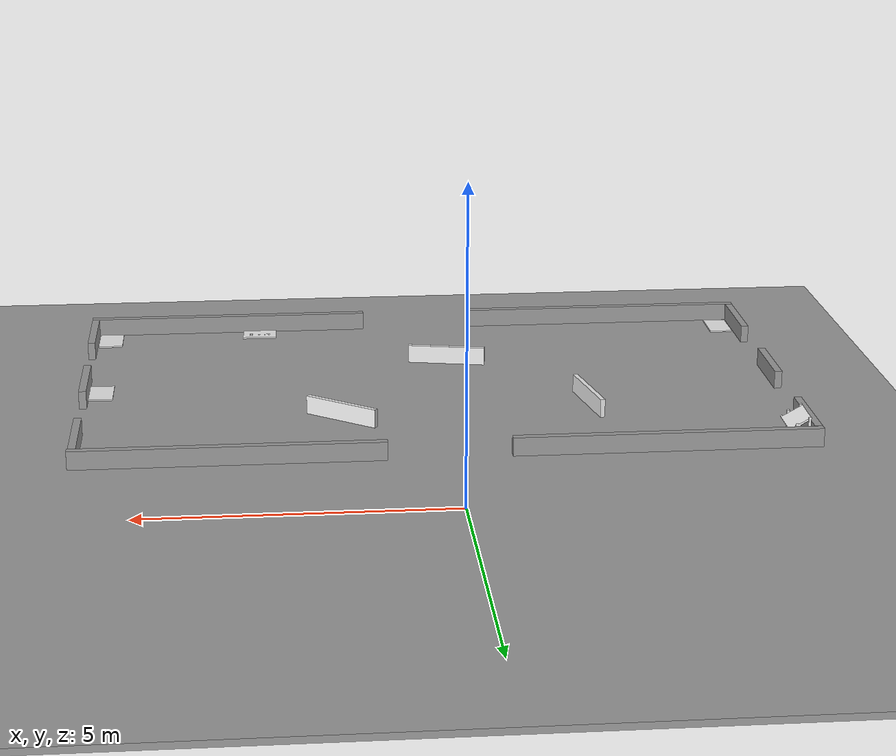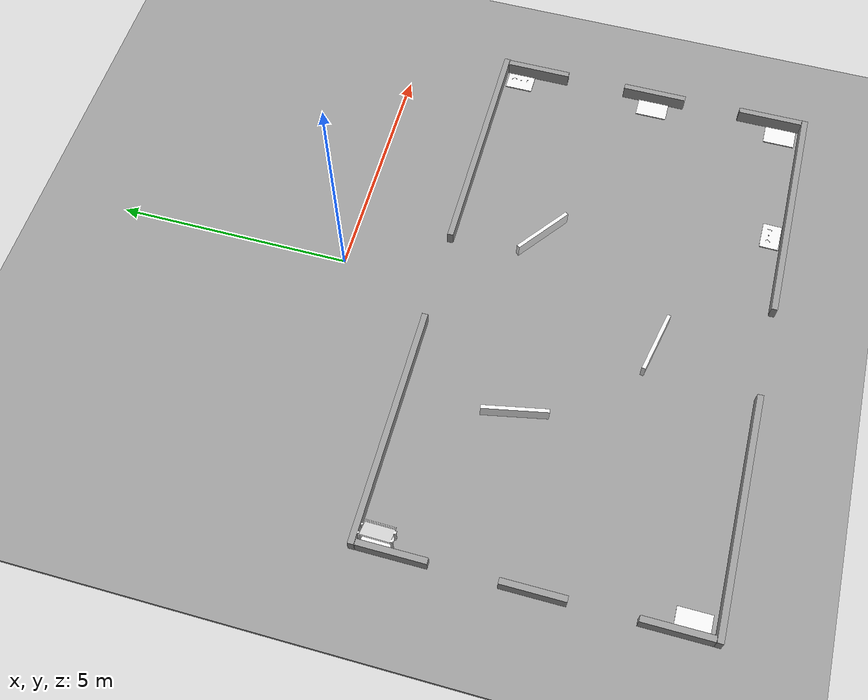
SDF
<sdf version="1.6">
 <world name="default">
  <light name="sun" type="directional">
   <pose>0 0 10 0 -0 0</pose>
   <diffuse>0.8 0.8 0.8 1</diffuse>
   <specular>0.2 0.2 0.2 1</specular>
   <attenuation>
    <range>1000</range>
    <constant>0.9</constant>
    <linear>0.01</linear>
    <quadratic>0.001</quadratic>
   </attenuation>
   <direction>-0.5 0.1 -0.9</direction>
  </light>
  <model name="ground_plane">
   <static>1</static>
   <link name="link">
    <collision name="collision">
     <geometry><plane><normal>0 0 1</normal><size>100 100</size></plane></geometry>
     <surface>
      <contact><collide_bitmask>65535</collide_bitmask></contact>
      <friction><ode><mu>100</mu><mu2>50</mu2></ode></friction>
     </surface>
    </collision>
    <visual name="visual">
     <cast_shadows>0</cast_shadows>
     <geometry><plane><normal>0 0 1</normal><size>100 100</size></plane></geometry>
     <material>
      <script><uri>file://media/materials/scripts/gazebo.material</uri><name>Gazebo/Grey</name></script>
     </material>
    </visual>
   </link>
  </model>
  <gravity>0 0 -9.8</gravity>
  <magnetic_field>6e-06 2.3e-05 -4.2e-05</magnetic_field>
  <atmosphere type="adiabatic"/>
  <physics name="default_physics" default="0" type="ode">
   <max_step_size>0.01</max_step_size>
   <real_time_factor>1</real_time_factor>
   <real_time_update_rate>1000</real_time_update_rate>
  </physics>
  <scene><ambient>0.4 0.4 0.4 1</ambient><background>0.7 0.7 0.7 1</background><shadows>1</shadows></scene>
  <audio><device>default</device></audio>
  <spherical_coordinates>
   <surface_model>EARTH_WGS84</surface_model>
   <latitude_deg>0</latitude_deg>
   <longitude_deg>0</longitude_deg>
   <elevation>0</elevation>
   <heading_deg>0</heading_deg>
  </spherical_coordinates>
  <model name="Untitled_2">
   <link name="link_0">
    <inertial>
     <mass>1</mass>
     <inertia>
      <ixx>0.166667</ixx>
      <ixy>0</ixy>
      <ixz>0</ixz>
      <iyy>0.166667</iyy>
      <iyz>0</iyz>
      <izz>0.166667</izz>
     </inertia>
    </inertial>
    <pose>-5.1149 -2.52181 0.194356 0 -0 3.12535</pose>
    <visual name="visual">
     <geometry><mesh><uri>/home/altzi/Desktop/CLIPBOARD/newSHELF.stl</uri><scale>1 1 1</scale></mesh></geometry>
     <material>
      <lighting>1</lighting>
      <script><uri>file://media/materials/scripts/gazebo.material</uri><name>Gazebo/White</name></script>
      <shader type="vertex"><normal_map>__default__</normal_map></shader>
      <ambient>1 1 1 1</ambient>
      <diffuse>1 1 1 1</diffuse>
      <specular>0 0 0 1</specular>
      <emissive>0 0 0 1</emissive>
     </material>
    </visual>
    <collision name="collision">
     <geometry><mesh><uri>/home/altzi/Desktop/CLIPBOARD/newSHELF.stl</uri><scale>1 1 1</scale></mesh></geometry>
     <surface>
      <friction>
       <ode><mu>1</mu><mu2>1</mu2><fdir1>0 0 0</fdir1><slip1>0</slip1><slip2>0</slip2></ode>
       <torsional>
        <coefficient>1</coefficient>
        <patch_radius>0</patch_radius>
        <surface_radius>0</surface_radius>
        <use_patch_radius>1</use_patch_radius>
        <ode><slip>0</slip></ode>
       </torsional>
      </friction>
      <bounce><restitution_coefficient>0</restitution_coefficient><threshold>1e+06</threshold></bounce>
      <contact>
       <collide_without_contact>0</collide_without_contact>
       <collide_without_contact_bitmask>1</collide_without_contact_bitmask>
       <collide_bitmask>1</collide_bitmask>
       <ode>
        <soft_cfm>0</soft_cfm>
        <soft_erp>0.2</soft_erp>
        <kp>1e+13</kp>
        <kd>1</kd>
        <max_vel>0.01</max_vel>
        <min_depth>0</min_depth>
       </ode>
       <bullet>
        <split_impulse>1</split_impulse>
        <split_impulse_penetration_threshold>-0.01</split_impulse_penetration_threshold>
        <soft_cfm>0</soft_cfm>
        <soft_erp>0.2</soft_erp>
        <kp>1e+13</kp>
        <kd>1</kd>
       </bullet>
      </contact>
     </surface>
    </collision>
   </link>
   <link name="link_1">
    <inertial>
     <mass>0.0202119</mass>
     <inertia>
      <ixx>0.000788113</ixx>
      <ixy>0</ixy>
      <ixz>0</ixz>
      <iyy>0.000282641</iyy>
      <iyz>0</iyz>
      <izz>0.00105245</izz>
     </inertia>
    </inertial>
    <pose>-5.10519 -8.46662 0.0015 0 -0 0</pose>
    <visual name="visual">
     <geometry><box><size>0.402955 0.680056 0.073717</size></box></geometry>
     <material>
      <lighting>1</lighting>
      <script><uri>file://media/materials/scripts/gazebo.material</uri><name>Gazebo/White</name></script>
      <shader type="vertex"><normal_map>__default__</normal_map></shader>
      <ambient>1 1 1 1</ambient>
      <diffuse>1 1 1 1</diffuse>
      <specular>0 0 0 1</specular>
      <emissive>0 0 0 1</emissive>
     </material>
    </visual>
    <collision name="collision">
     <geometry><box><size>0.402955 0.680056 0.073717</size></box></geometry>
     <surface>
      <friction>
       <ode><mu>1</mu><mu2>1</mu2><fdir1>0 0 0</fdir1><slip1>0</slip1><slip2>0</slip2></ode>
       <torsional>
        <coefficient>1</coefficient>
        <patch_radius>0</patch_radius>
        <surface_radius>0</surface_radius>
        <use_patch_radius>1</use_patch_radius>
        <ode><slip>0</slip></ode>
       </torsional>
      </friction>
      <bounce><restitution_coefficient>0</restitution_coefficient><threshold>1e+06</threshold></bounce>
      <contact>
       <collide_without_contact>0</collide_without_contact>
       <collide_without_contact_bitmask>1</collide_without_contact_bitmask>
       <collide_bitmask>1</collide_bitmask>
       <ode>
        <soft_cfm>0</soft_cfm>
        <soft_erp>0.2</soft_erp>
        <kp>1e+13</kp>
        <kd>1</kd>
        <max_vel>0.01</max_vel>
        <min_depth>0</min_depth>
       </ode>
       <bullet>
        <split_impulse>1</split_impulse>
        <split_impulse_penetration_threshold>-0.01</split_impulse_penetration_threshold>
        <soft_cfm>0</soft_cfm>
        <soft_erp>0.2</soft_erp>
        <kp>1e+13</kp>
        <kd>1</kd>
       </bullet>
      </contact>
     </surface>
    </collision>
   </link>
   <link name="link_1_clone">
    <inertial>
     <mass>0.0205849</mass>
     <inertia>
      <ixx>0.000802656</ixx>
      <ixy>0</ixy>
      <ixz>0</ixz>
      <iyy>0.000298316</iyy>
      <iyz>0</iyz>
      <izz>0.00108233</izz>
     </inertia>
    </inertial>
    <pose>6.21697 -5.5808 0.0015 0 -0 0</pose>
    <visual name="visual">
     <geometry><box><size>0.41045 0.680056 0.073717</size></box></geometry>
     <material>
      <lighting>1</lighting>
      <script><uri>file://media/materials/scripts/gazebo.material</uri><name>Gazebo/White</name></script>
      <shader type="vertex"><normal_map>__default__</normal_map></shader>
      <ambient>1 1 1 1</ambient>
      <diffuse>1 1 1 1</diffuse>
      <specular>0 0 0 1</specular>
      <emissive>0 0 0 1</emissive>
     </material>
    </visual>
    <collision name="collision">
     <geometry><box><size>0.41045 0.680056 0.073717</size></box></geometry>
     <surface>
      <friction>
       <ode><mu>1</mu><mu2>1</mu2><fdir1>0 0 0</fdir1><slip1>0</slip1><slip2>0</slip2></ode>
       <torsional>
        <coefficient>1</coefficient>
        <patch_radius>0</patch_radius>
        <surface_radius>0</surface_radius>
        <use_patch_radius>1</use_patch_radius>
        <ode><slip>0</slip></ode>
       </torsional>
      </friction>
      <bounce><restitution_coefficient>0</restitution_coefficient><threshold>1e+06</threshold></bounce>
      <contact>
       <collide_without_contact>0</collide_without_contact>
       <collide_without_contact_bitmask>1</collide_without_contact_bitmask>
       <collide_bitmask>1</collide_bitmask>
       <ode>
        <soft_cfm>0</soft_cfm>
        <soft_erp>0.2</soft_erp>
        <kp>1e+13</kp>
        <kd>1</kd>
        <max_vel>0.01</max_vel>
        <min_depth>0</min_depth>
       </ode>
       <bullet>
        <split_impulse>1</split_impulse>
        <split_impulse_penetration_threshold>-0.01</split_impulse_penetration_threshold>
        <soft_cfm>0</soft_cfm>
        <soft_erp>0.2</soft_erp>
        <kp>1e+13</kp>
        <kd>1</kd>
       </bullet>
      </contact>
     </surface>
    </collision>
   </link>
   <link name="link_1_clone_clone">
    <inertial>
     <mass>0.0213534</mass>
     <inertia>
      <ixx>0.000832622</ixx>
      <ixy>0</ixy>
      <ixz>0</ixz>
      <iyy>0.000332252</iyy>
      <iyz>0</iyz>
      <izz>0.00114553</izz>
     </inertia>
    </inertial>
    <pose>6.20019 -8.49206 0.0015 0 -0 0</pose>
    <visual name="visual">
     <geometry><box><size>0.425772 0.680056 0.073717</size></box></geometry>
     <material>
      <lighting>1</lighting>
      <script><uri>file://media/materials/scripts/gazebo.material</uri><name>Gazebo/White</name></script>
      <shader type="vertex"><normal_map>__default__</normal_map></shader>
      <ambient>1 1 1 1</ambient>
      <diffuse>1 1 1 1</diffuse>
      <specular>0 0 0 1</specular>
      <emissive>0 0 0 1</emissive>
     </material>
    </visual>
    <collision name="collision">
     <geometry><box><size>0.425772 0.680056 0.073717</size></box></geometry>
     <surface>
      <friction>
       <ode><mu>1</mu><mu2>1</mu2><fdir1>0 0 0</fdir1><slip1>0</slip1><slip2>0</slip2></ode>
       <torsional>
        <coefficient>1</coefficient>
        <patch_radius>0</patch_radius>
        <surface_radius>0</surface_radius>
        <use_patch_radius>1</use_patch_radius>
        <ode><slip>0</slip></ode>
       </torsional>
      </friction>
      <bounce><restitution_coefficient>0</restitution_coefficient><threshold>1e+06</threshold></bounce>
      <contact>
       <collide_without_contact>0</collide_without_contact>
       <collide_without_contact_bitmask>1</collide_without_contact_bitmask>
       <collide_bitmask>1</collide_bitmask>
       <ode>
        <soft_cfm>0</soft_cfm>
        <soft_erp>0.2</soft_erp>
        <kp>1e+13</kp>
        <kd>1</kd>
        <max_vel>0.01</max_vel>
        <min_depth>0</min_depth>
       </ode>
       <bullet>
        <split_impulse>1</split_impulse>
        <split_impulse_penetration_threshold>-0.01</split_impulse_penetration_threshold>
        <soft_cfm>0</soft_cfm>
        <soft_erp>0.2</soft_erp>
        <kp>1e+13</kp>
        <kd>1</kd>
       </bullet>
      </contact>
     </surface>
    </collision>
   </link>
   <link name="link_2">
    <inertial>
     <mass>1</mass>
     <inertia>
      <ixx>0.166667</ixx>
      <ixy>0</ixy>
      <ixz>0</ixz>
      <iyy>0.166667</iyy>
      <iyz>0</iyz>
      <izz>0.166667</izz>
     </inertia>
    </inertial>
    <pose>6.19666 -2.48903 -0.040017 0 -0 0</pose>
    <visual name="visual">
     <geometry><mesh><uri>/home/altzi/Desktop/CLIPBOARD/CAV.stl</uri><scale>1 1 1</scale></mesh></geometry>
     <material>
      <lighting>1</lighting>
      <script><uri>file://media/materials/scripts/gazebo.material</uri><name>Gazebo/White</name></script>
      <shader type="vertex"><normal_map>__default__</normal_map></shader>
      <ambient>1 1 1 1</ambient>
      <diffuse>1 1 1 1</diffuse>
      <specular>0 0 0 1</specular>
      <emissive>0 0 0 1</emissive>
     </material>
    </visual>
    <collision name="collision">
     <geometry><mesh><uri>/home/altzi/Desktop/CLIPBOARD/CAV.stl</uri><scale>1 1 1</scale></mesh></geometry>
     <surface>
      <friction>
       <ode><mu>1</mu><mu2>1</mu2><fdir1>0 0 0</fdir1><slip1>0</slip1><slip2>0</slip2></ode>
       <torsional>
        <coefficient>1</coefficient>
        <patch_radius>0</patch_radius>
        <surface_radius>0</surface_radius>
        <use_patch_radius>1</use_patch_radius>
        <ode><slip>0</slip></ode>
       </torsional>
      </friction>
      <bounce><restitution_coefficient>0</restitution_coefficient><threshold>1e+06</threshold></bounce>
      <contact>
       <collide_without_contact>0</collide_without_contact>
       <collide_without_contact_bitmask>1</collide_without_contact_bitmask>
       <collide_bitmask>1</collide_bitmask>
       <ode>
        <soft_cfm>0</soft_cfm>
        <soft_erp>0.2</soft_erp>
        <kp>1e+13</kp>
        <kd>1</kd>
        <max_vel>0.01</max_vel>
        <min_depth>0</min_depth>
       </ode>
       <bullet>
        <split_impulse>1</split_impulse>
        <split_impulse_penetration_threshold>-0.01</split_impulse_penetration_threshold>
        <soft_cfm>0</soft_cfm>
        <soft_erp>0.2</soft_erp>
        <kp>1e+13</kp>
        <kd>1</kd>
       </bullet>
      </contact>
     </surface>
    </collision>
   </link>
   <link name="link_2_clone">
    <inertial>
     <mass>1</mass>
     <inertia>
      <ixx>0.166667</ixx>
      <ixy>0</ixy>
      <ixz>0</ixz>
      <iyy>0.166667</iyy>
      <iyz>0</iyz>
      <izz>0.166667</izz>
     </inertia>
    </inertial>
    <pose>3.48059 -8.66921 -0.040017 0 -0 1.55439</pose>
    <visual name="visual">
     <geometry><mesh><uri>/home/altzi/Desktop/CLIPBOARD/CAV.stl</uri><scale>1 1 1</scale></mesh></geometry>
     <material>
      <lighting>1</lighting>
      <script><uri>file://media/materials/scripts/gazebo.material</uri><name>Gazebo/White</name></script>
      <shader type="vertex"><normal_map>__default__</normal_map></shader>
      <ambient>1 1 1 1</ambient>
      <diffuse>1 1 1 1</diffuse>
      <specular>0 0 0 1</specular>
      <emissive>0 0 0 1</emissive>
     </material>
    </visual>
    <collision name="collision">
     <geometry><mesh><uri>/home/altzi/Desktop/CLIPBOARD/CAV.stl</uri><scale>1 1 1</scale></mesh></geometry>
     <surface>
      <friction>
       <ode><mu>1</mu><mu2>1</mu2><fdir1>0 0 0</fdir1><slip1>0</slip1><slip2>0</slip2></ode>
       <torsional>
        <coefficient>1</coefficient>
        <patch_radius>0</patch_radius>
        <surface_radius>0</surface_radius>
        <use_patch_radius>1</use_patch_radius>
        <ode><slip>0</slip></ode>
       </torsional>
      </friction>
      <bounce><restitution_coefficient>0</restitution_coefficient><threshold>1e+06</threshold></bounce>
      <contact>
       <collide_without_contact>0</collide_without_contact>
       <collide_without_contact_bitmask>1</collide_without_contact_bitmask>
       <collide_bitmask>1</collide_bitmask>
       <ode>
        <soft_cfm>0</soft_cfm>
        <soft_erp>0.2</soft_erp>
        <kp>1e+13</kp>
        <kd>1</kd>
        <max_vel>0.01</max_vel>
        <min_depth>0</min_depth>
       </ode>
       <bullet>
        <split_impulse>1</split_impulse>
        <split_impulse_penetration_threshold>-0.01</split_impulse_penetration_threshold>
        <soft_cfm>0</soft_cfm>
        <soft_erp>0.2</soft_erp>
        <kp>1e+13</kp>
        <kd>1</kd>
       </bullet>
      </contact>
     </surface>
    </collision>
   </link>
   <link name="link_3">
    <inertial>
     <mass>0.038596</mass>
     <inertia>
      <ixx>0.00043789</ixx>
      <ixy>0</ixy>
      <ixz>0</ixz>
      <iyy>0.00634051</iyy>
      <iyz>0</iyz>
      <izz>0.00594268</izz>
     </inertia>
    </inertial>
    <pose>2.17379 -3.94035 0.144647 0 0 -0.636482</pose>
    <visual name="visual">
     <geometry><box><size>1.35699 0.078914 0.36044</size></box></geometry>
     <material>
      <lighting>1</lighting>
      <script><uri>file://media/materials/scripts/gazebo.material</uri><name>Gazebo/White</name></script>
      <shader type="vertex"><normal_map>__default__</normal_map></shader>
      <ambient>1 1 1 1</ambient>
      <diffuse>1 1 1 1</diffuse>
      <specular>0 0 0 1</specular>
      <emissive>0 0 0 1</emissive>
     </material>
    </visual>
    <collision name="collision">
     <geometry><box><size>1.35699 0.078914 0.36044</size></box></geometry>
     <surface>
      <friction>
       <ode><mu>1</mu><mu2>1</mu2><fdir1>0 0 0</fdir1><slip1>0</slip1><slip2>0</slip2></ode>
       <torsional>
        <coefficient>1</coefficient>
        <patch_radius>0</patch_radius>
        <surface_radius>0</surface_radius>
        <use_patch_radius>1</use_patch_radius>
        <ode><slip>0</slip></ode>
       </torsional>
      </friction>
      <bounce><restitution_coefficient>0</restitution_coefficient><threshold>1e+06</threshold></bounce>
      <contact>
       <collide_without_contact>0</collide_without_contact>
       <collide_without_contact_bitmask>1</collide_without_contact_bitmask>
       <collide_bitmask>1</collide_bitmask>
       <ode>
        <soft_cfm>0</soft_cfm>
        <soft_erp>0.2</soft_erp>
        <kp>1e+13</kp>
        <kd>1</kd>
        <max_vel>0.01</max_vel>
        <min_depth>0</min_depth>
       </ode>
       <bullet>
        <split_impulse>1</split_impulse>
        <split_impulse_penetration_threshold>-0.01</split_impulse_penetration_threshold>
        <soft_cfm>0</soft_cfm>
        <soft_erp>0.2</soft_erp>
        <kp>1e+13</kp>
        <kd>1</kd>
       </bullet>
      </contact>
     </surface>
    </collision>
   </link>
   <link name="link_3_clone">
    <inertial>
     <mass>0.038596</mass>
     <inertia>
      <ixx>0.00043789</ixx>
      <ixy>0</ixy>
      <ixz>0</ixz>
      <iyy>0.00634051</iyy>
      <iyz>0</iyz>
      <izz>0.00594268</izz>
     </inertia>
    </inertial>
    <pose>0.17579 -6.76268 0.144647 0 0 -0.205284</pose>
    <visual name="visual">
     <geometry><box><size>1.35699 0.078914 0.36044</size></box></geometry>
     <material>
      <lighting>1</lighting>
      <script><uri>file://media/materials/scripts/gazebo.material</uri><name>Gazebo/White</name></script>
      <shader type="vertex"><normal_map>__default__</normal_map></shader>
      <ambient>1 1 1 1</ambient>
      <diffuse>1 1 1 1</diffuse>
      <specular>0 0 0 1</specular>
      <emissive>0 0 0 1</emissive>
     </material>
    </visual>
    <collision name="collision">
     <geometry><box><size>1.35699 0.078914 0.36044</size></box></geometry>
     <surface>
      <friction>
       <ode><mu>1</mu><mu2>1</mu2><fdir1>0 0 0</fdir1><slip1>0</slip1><slip2>0</slip2></ode>
       <torsional>
        <coefficient>1</coefficient>
        <patch_radius>0</patch_radius>
        <surface_radius>0</surface_radius>
        <use_patch_radius>1</use_patch_radius>
        <ode><slip>0</slip></ode>
       </torsional>
      </friction>
      <bounce><restitution_coefficient>0</restitution_coefficient><threshold>1e+06</threshold></bounce>
      <contact>
       <collide_without_contact>0</collide_without_contact>
       <collide_without_contact_bitmask>1</collide_without_contact_bitmask>
       <collide_bitmask>1</collide_bitmask>
       <ode>
        <soft_cfm>0</soft_cfm>
        <soft_erp>0.2</soft_erp>
        <kp>1e+13</kp>
        <kd>1</kd>
        <max_vel>0.01</max_vel>
        <min_depth>0</min_depth>
       </ode>
       <bullet>
        <split_impulse>1</split_impulse>
        <split_impulse_penetration_threshold>-0.01</split_impulse_penetration_threshold>
        <soft_cfm>0</soft_cfm>
        <soft_erp>0.2</soft_erp>
        <kp>1e+13</kp>
        <kd>1</kd>
       </bullet>
      </contact>
     </surface>
    </collision>
   </link>
   <link name="link_3_clone_clone">
    <inertial>
     <mass>0.038596</mass>
     <inertia>
      <ixx>0.00043789</ixx>
      <ixy>0</ixy>
      <ixz>0</ixz>
      <iyy>0.00634051</iyy>
      <iyz>0</iyz>
      <izz>0.00594268</izz>
     </inertia>
    </inertial>
    <pose>-2.01699 -4.37073 0.144647 0 0 -1.37398</pose>
    <visual name="visual">
     <geometry><box><size>1.35699 0.078914 0.36044</size></box></geometry>
     <material>
      <lighting>1</lighting>
      <script><uri>file://media/materials/scripts/gazebo.material</uri><name>Gazebo/White</name></script>
      <shader type="pixel"><normal_map>__default__</normal_map></shader>
      <ambient>1 1 1 1</ambient>
      <diffuse>1 1 1 1</diffuse>
      <specular>0 0 0 1</specular>
      <emissive>0 0 0 1</emissive>
     </material>
    </visual>
    <collision name="collision">
     <geometry><box><size>1.35699 0.078914 0.36044</size></box></geometry>
     <surface>
      <friction>
       <ode><mu>1</mu><mu2>1</mu2><fdir1>0 0 0</fdir1><slip1>0</slip1><slip2>0</slip2></ode>
       <torsional>
        <coefficient>1</coefficient>
        <patch_radius>0</patch_radius>
        <surface_radius>0</surface_radius>
        <use_patch_radius>1</use_patch_radius>
        <ode><slip>0</slip></ode>
       </torsional>
      </friction>
      <bounce><restitution_coefficient>0</restitution_coefficient><threshold>1e+06</threshold></bounce>
      <contact>
       <collide_without_contact>0</collide_without_contact>
       <collide_without_contact_bitmask>1</collide_without_contact_bitmask>
       <collide_bitmask>1</collide_bitmask>
       <ode>
        <soft_cfm>0</soft_cfm>
        <soft_erp>0.2</soft_erp>
        <kp>1e+13</kp>
        <kd>1</kd>
        <max_vel>0.01</max_vel>
        <min_depth>0</min_depth>
       </ode>
       <bullet>
        <split_impulse>1</split_impulse>
        <split_impulse_penetration_threshold>-0.01</split_impulse_penetration_threshold>
        <soft_cfm>0</soft_cfm>
        <soft_erp>0.2</soft_erp>
        <kp>1e+13</kp>
        <kd>1</kd>
       </bullet>
      </contact>
     </surface>
    </collision>
   </link>
   <model name="Untitled_1">
    <link name="link_0">
     <inertial>
      <mass>0.225645</mass>
      <inertia>
       <ixx>0.00269111</ixx>
       <ixy>0</ixy>
       <ixz>0</ixz>
       <iyy>0.475029</iyy>
       <iyz>0</iyz>
       <izz>0.472939</izz>
      </inertia>
     </inertial>
     <pose>3.53425 -2.16273 0.183507 0 -0 0</pose>
     <visual name="visual">
      <geometry><box><size>5.01352 0.126453 0.356547</size></box></geometry>
      <material>
       <lighting>1</lighting>
       <script><uri>file://media/materials/scripts/gazebo.material</uri><name>Gazebo/Grey</name></script>
       <shader type="vertex"><normal_map>__default__</normal_map></shader>
       <ambient>1 1 1 1</ambient>
       <diffuse>0.7 0.7 0.7 1</diffuse>
       <specular>0.01 0.01 0.01 1</specular>
       <emissive>0 0 0 1</emissive>
      </material>
     </visual>
     <collision name="collision">
      <geometry><box><size>5.01352 0.126453 0.356547</size></box></geometry>
      <surface>
       <friction>
        <ode><mu>1</mu><mu2>1</mu2><fdir1>0 0 0</fdir1><slip1>0</slip1><slip2>0</slip2></ode>
        <torsional>
         <coefficient>1</coefficient>
         <patch_radius>0</patch_radius>
         <surface_radius>0</surface_radius>
         <use_patch_radius>1</use_patch_radius>
         <ode><slip>0</slip></ode>
        </torsional>
       </friction>
       <bounce><restitution_coefficient>0</restitution_coefficient><threshold>1e+06</threshold></bounce>
       <contact>
        <collide_without_contact>0</collide_without_contact>
        <collide_without_contact_bitmask>1</collide_without_contact_bitmask>
        <collide_bitmask>1</collide_bitmask>
        <ode>
         <soft_cfm>0</soft_cfm>
         <soft_erp>0.2</soft_erp>
         <kp>1e+13</kp>
         <kd>1</kd>
         <max_vel>0.01</max_vel>
         <min_depth>0</min_depth>
        </ode>
        <bullet>
         <split_impulse>1</split_impulse>
         <split_impulse_penetration_threshold>-0.01</split_impulse_penetration_threshold>
         <soft_cfm>0</soft_cfm>
         <soft_erp>0.2</soft_erp>
         <kp>1e+13</kp>
         <kd>1</kd>
        </bullet>
       </contact>
      </surface>
     </collision>
    </link>
    <link name="link_0_clone">
     <inertial>
      <mass>0.225645</mass>
      <inertia>
       <ixx>0.00269111</ixx>
       <ixy>0</ixy>
       <ixz>0</ixz>
       <iyy>0.475029</iyy>
       <iyz>0</iyz>
       <izz>0.472939</izz>
      </inertia>
     </inertial>
     <pose>3.54125 -9.03235 0.183507 0 -0 0</pose>
     <visual name="visual">
      <geometry><box><size>5.01352 0.126453 0.356547</size></box></geometry>
      <material>
       <lighting>1</lighting>
       <script><uri>file://media/materials/scripts/gazebo.material</uri><name>Gazebo/Grey</name></script>
       <shader type="vertex"><normal_map>__default__</normal_map></shader>
       <ambient>1 1 1 1</ambient>
       <diffuse>0.7 0.7 0.7 1</diffuse>
       <specular>0.01 0.01 0.01 1</specular>
       <emissive>0 0 0 1</emissive>
      </material>
     </visual>
     <collision name="collision">
      <geometry><box><size>5.01352 0.126453 0.356547</size></box></geometry>
      <surface>
       <friction>
        <ode><mu>1</mu><mu2>1</mu2><fdir1>0 0 0</fdir1><slip1>0</slip1><slip2>0</slip2></ode>
        <torsional>
         <coefficient>1</coefficient>
         <patch_radius>0</patch_radius>
         <surface_radius>0</surface_radius>
         <use_patch_radius>1</use_patch_radius>
         <ode><slip>0</slip></ode>
        </torsional>
       </friction>
       <bounce><restitution_coefficient>0</restitution_coefficient><threshold>1e+06</threshold></bounce>
       <contact>
        <collide_without_contact>0</collide_without_contact>
        <collide_without_contact_bitmask>1</collide_without_contact_bitmask>
        <collide_bitmask>1</collide_bitmask>
        <ode>
         <soft_cfm>0</soft_cfm>
         <soft_erp>0.2</soft_erp>
         <kp>1e+13</kp>
         <kd>1</kd>
         <max_vel>0.01</max_vel>
         <min_depth>0</min_depth>
        </ode>
        <bullet>
         <split_impulse>1</split_impulse>
         <split_impulse_penetration_threshold>-0.01</split_impulse_penetration_threshold>
         <soft_cfm>0</soft_cfm>
         <soft_erp>0.2</soft_erp>
         <kp>1e+13</kp>
         <kd>1</kd>
        </bullet>
       </contact>
      </surface>
     </collision>
    </link>
    <link name="link_0_clone_0">
     <inertial>
      <mass>0.225645</mass>
      <inertia>
       <ixx>0.00269111</ixx>
       <ixy>0</ixy>
       <ixz>0</ixz>
       <iyy>0.475029</iyy>
       <iyz>0</iyz>
       <izz>0.472939</izz>
      </inertia>
     </inertial>
     <pose>-3.4661 -2.17935 0.183507 0 -0 0</pose>
     <visual name="visual">
      <geometry><box><size>5.01352 0.126453 0.356547</size></box></geometry>
      <material>
       <lighting>1</lighting>
       <script><uri>file://media/materials/scripts/gazebo.material</uri><name>Gazebo/Grey</name></script>
       <shader type="vertex"><normal_map>__default__</normal_map></shader>
       <ambient>1 1 1 1</ambient>
       <diffuse>0.7 0.7 0.7 1</diffuse>
       <specular>0.01 0.01 0.01 1</specular>
       <emissive>0 0 0 1</emissive>
      </material>
     </visual>
     <collision name="collision">
      <geometry><box><size>5.01352 0.126453 0.356547</size></box></geometry>
      <surface>
       <friction>
        <ode><mu>1</mu><mu2>1</mu2><fdir1>0 0 0</fdir1><slip1>0</slip1><slip2>0</slip2></ode>
        <torsional>
         <coefficient>1</coefficient>
         <patch_radius>0</patch_radius>
         <surface_radius>0</surface_radius>
         <use_patch_radius>1</use_patch_radius>
         <ode><slip>0</slip></ode>
        </torsional>
       </friction>
       <bounce><restitution_coefficient>0</restitution_coefficient><threshold>1e+06</threshold></bounce>
       <contact>
        <collide_without_contact>0</collide_without_contact>
        <collide_without_contact_bitmask>1</collide_without_contact_bitmask>
        <collide_bitmask>1</collide_bitmask>
        <ode>
         <soft_cfm>0</soft_cfm>
         <soft_erp>0.2</soft_erp>
         <kp>1e+13</kp>
         <kd>1</kd>
         <max_vel>0.01</max_vel>
         <min_depth>0</min_depth>
        </ode>
        <bullet>
         <split_impulse>1</split_impulse>
         <split_impulse_penetration_threshold>-0.01</split_impulse_penetration_threshold>
         <soft_cfm>0</soft_cfm>
         <soft_erp>0.2</soft_erp>
         <kp>1e+13</kp>
         <kd>1</kd>
        </bullet>
       </contact>
      </surface>
     </collision>
    </link>
    <link name="link_0_clone_1">
     <inertial>
      <mass>0.225645</mass>
      <inertia>
       <ixx>0.00269111</ixx>
       <ixy>0</ixy>
       <ixz>0</ixz>
       <iyy>0.475029</iyy>
       <iyz>0</iyz>
       <izz>0.472939</izz>
      </inertia>
     </inertial>
     <pose>-3.46287 -9.03457 0.183507 0 -0 0</pose>
     <visual name="visual">
      <geometry><box><size>5.01352 0.126453 0.356547</size></box></geometry>
      <material>
       <lighting>1</lighting>
       <script><uri>file://media/materials/scripts/gazebo.material</uri><name>Gazebo/Grey</name></script>
       <shader type="vertex"><normal_map>__default__</normal_map></shader>
       <ambient>1 1 1 1</ambient>
       <diffuse>0.7 0.7 0.7 1</diffuse>
       <specular>0.01 0.01 0.01 1</specular>
       <emissive>0 0 0 1</emissive>
      </material>
     </visual>
     <collision name="collision">
      <geometry><box><size>5.01352 0.126453 0.356547</size></box></geometry>
      <surface>
       <friction>
        <ode><mu>1</mu><mu2>1</mu2><fdir1>0 0 0</fdir1><slip1>0</slip1><slip2>0</slip2></ode>
        <torsional>
         <coefficient>1</coefficient>
         <patch_radius>0</patch_radius>
         <surface_radius>0</surface_radius>
         <use_patch_radius>1</use_patch_radius>
         <ode><slip>0</slip></ode>
        </torsional>
       </friction>
       <bounce><restitution_coefficient>0</restitution_coefficient><threshold>1e+06</threshold></bounce>
       <contact>
        <collide_without_contact>0</collide_without_contact>
        <collide_without_contact_bitmask>1</collide_without_contact_bitmask>
        <collide_bitmask>1</collide_bitmask>
        <ode>
         <soft_cfm>0</soft_cfm>
         <soft_erp>0.2</soft_erp>
         <kp>1e+13</kp>
         <kd>1</kd>
         <max_vel>0.01</max_vel>
         <min_depth>0</min_depth>
        </ode>
        <bullet>
         <split_impulse>1</split_impulse>
         <split_impulse_penetration_threshold>-0.01</split_impulse_penetration_threshold>
         <soft_cfm>0</soft_cfm>
         <soft_erp>0.2</soft_erp>
         <kp>1e+13</kp>
         <kd>1</kd>
        </bullet>
       </contact>
      </surface>
     </collision>
    </link>
    <link name="link_0_clone_2">
     <inertial>
      <mass>0.0627386</mass>
      <inertia>
       <ixx>0.00074824</ixx>
       <ixy>0</ixy>
       <ixz>0</ixz>
       <iyy>0.0108237</iyy>
       <iyz>0</iyz>
       <izz>0.0102427</izz>
      </inertia>
     </inertial>
     <pose>5.97367 -5.6347 0.183507 0 -0 1.5708</pose>
     <visual name="visual">
      <geometry><box><size>1.39396 0.126453 0.356547</size></box></geometry>
      <material>
       <lighting>1</lighting>
       <script><uri>file://media/materials/scripts/gazebo.material</uri><name>Gazebo/Grey</name></script>
       <shader type="vertex"><normal_map>__default__</normal_map></shader>
       <ambient>1 1 1 1</ambient>
       <diffuse>0.7 0.7 0.7 1</diffuse>
       <specular>0.01 0.01 0.01 1</specular>
       <emissive>0 0 0 1</emissive>
      </material>
     </visual>
     <collision name="collision">
      <geometry><box><size>1.39396 0.126453 0.356547</size></box></geometry>
      <surface>
       <friction>
        <ode><mu>1</mu><mu2>1</mu2><fdir1>0 0 0</fdir1><slip1>0</slip1><slip2>0</slip2></ode>
        <torsional>
         <coefficient>1</coefficient>
         <patch_radius>0</patch_radius>
         <surface_radius>0</surface_radius>
         <use_patch_radius>1</use_patch_radius>
         <ode><slip>0</slip></ode>
        </torsional>
       </friction>
       <bounce><restitution_coefficient>0</restitution_coefficient><threshold>1e+06</threshold></bounce>
       <contact>
        <collide_without_contact>0</collide_without_contact>
        <collide_without_contact_bitmask>1</collide_without_contact_bitmask>
        <collide_bitmask>1</collide_bitmask>
        <ode>
         <soft_cfm>0</soft_cfm>
         <soft_erp>0.2</soft_erp>
         <kp>1e+13</kp>
         <kd>1</kd>
         <max_vel>0.01</max_vel>
         <min_depth>0</min_depth>
        </ode>
        <bullet>
         <split_impulse>1</split_impulse>
         <split_impulse_penetration_threshold>-0.01</split_impulse_penetration_threshold>
         <soft_cfm>0</soft_cfm>
         <soft_erp>0.2</soft_erp>
         <kp>1e+13</kp>
         <kd>1</kd>
        </bullet>
       </contact>
      </surface>
     </collision>
    </link>
    <link name="link_0_clone_2_clone">
     <inertial>
      <mass>0.0627386</mass>
      <inertia>
       <ixx>0.00074824</ixx>
       <ixy>0</ixy>
       <ixz>0</ixz>
       <iyy>0.0108237</iyy>
       <iyz>0</iyz>
       <izz>0.0102427</izz>
      </inertia>
     </inertial>
     <pose>5.98205 -8.26683 0.183507 0 -0 1.5708</pose>
     <visual name="visual">
      <geometry><box><size>1.39396 0.126453 0.356547</size></box></geometry>
      <material>
       <lighting>1</lighting>
       <script><uri>file://media/materials/scripts/gazebo.material</uri><name>Gazebo/Grey</name></script>
       <shader type="vertex"><normal_map>__default__</normal_map></shader>
       <ambient>1 1 1 1</ambient>
       <diffuse>0.7 0.7 0.7 1</diffuse>
       <specular>0.01 0.01 0.01 1</specular>
       <emissive>0 0 0 1</emissive>
      </material>
     </visual>
     <collision name="collision">
      <geometry><box><size>1.39396 0.126453 0.356547</size></box></geometry>
      <surface>
       <friction>
        <ode><mu>1</mu><mu2>1</mu2><fdir1>0 0 0</fdir1><slip1>0</slip1><slip2>0</slip2></ode>
        <torsional>
         <coefficient>1</coefficient>
         <patch_radius>0</patch_radius>
         <surface_radius>0</surface_radius>
         <use_patch_radius>1</use_patch_radius>
         <ode><slip>0</slip></ode>
        </torsional>
       </friction>
       <bounce><restitution_coefficient>0</restitution_coefficient><threshold>1e+06</threshold></bounce>
       <contact>
        <collide_without_contact>0</collide_without_contact>
        <collide_without_contact_bitmask>1</collide_without_contact_bitmask>
        <collide_bitmask>1</collide_bitmask>
        <ode>
         <soft_cfm>0</soft_cfm>
         <soft_erp>0.2</soft_erp>
         <kp>1e+13</kp>
         <kd>1</kd>
         <max_vel>0.01</max_vel>
         <min_depth>0</min_depth>
        </ode>
        <bullet>
         <split_impulse>1</split_impulse>
         <split_impulse_penetration_threshold>-0.01</split_impulse_penetration_threshold>
         <soft_cfm>0</soft_cfm>
         <soft_erp>0.2</soft_erp>
         <kp>1e+13</kp>
         <kd>1</kd>
        </bullet>
       </contact>
      </surface>
     </collision>
    </link>
    <link name="link_0_clone_2_clone_0">
     <inertial>
      <mass>0.0627386</mass>
      <inertia>
       <ixx>0.00074824</ixx>
       <ixy>0</ixy>
       <ixz>0</ixz>
       <iyy>0.0108237</iyy>
       <iyz>0</iyz>
       <izz>0.0102427</izz>
      </inertia>
     </inertial>
     <pose>5.96076 -2.93291 0.183507 0 -0 1.5708</pose>
     <visual name="visual">
      <geometry><box><size>1.39396 0.126453 0.356547</size></box></geometry>
      <material>
       <lighting>1</lighting>
       <script><uri>file://media/materials/scripts/gazebo.material</uri><name>Gazebo/Grey</name></script>
       <shader type="vertex"><normal_map>__default__</normal_map></shader>
       <ambient>1 1 1 1</ambient>
       <diffuse>0.7 0.7 0.7 1</diffuse>
       <specular>0.01 0.01 0.01 1</specular>
       <emissive>0 0 0 1</emissive>
      </material>
     </visual>
     <collision name="collision">
      <geometry><box><size>1.39396 0.126453 0.356547</size></box></geometry>
      <surface>
       <friction>
        <ode><mu>1</mu><mu2>1</mu2><fdir1>0 0 0</fdir1><slip1>0</slip1><slip2>0</slip2></ode>
        <torsional>
         <coefficient>1</coefficient>
         <patch_radius>0</patch_radius>
         <surface_radius>0</surface_radius>
         <use_patch_radius>1</use_patch_radius>
         <ode><slip>0</slip></ode>
        </torsional>
       </friction>
       <bounce><restitution_coefficient>0</restitution_coefficient><threshold>1e+06</threshold></bounce>
       <contact>
        <collide_without_contact>0</collide_without_contact>
        <collide_without_contact_bitmask>1</collide_without_contact_bitmask>
        <collide_bitmask>1</collide_bitmask>
        <ode>
         <soft_cfm>0</soft_cfm>
         <soft_erp>0.2</soft_erp>
         <kp>1e+13</kp>
         <kd>1</kd>
         <max_vel>0.01</max_vel>
         <min_depth>0</min_depth>
        </ode>
        <bullet>
         <split_impulse>1</split_impulse>
         <split_impulse_penetration_threshold>-0.01</split_impulse_penetration_threshold>
         <soft_cfm>0</soft_cfm>
         <soft_erp>0.2</soft_erp>
         <kp>1e+13</kp>
         <kd>1</kd>
        </bullet>
       </contact>
      </surface>
     </collision>
    </link>
    <link name="link_0_clone_2_clone_1">
     <inertial>
      <mass>0.0627386</mass>
      <inertia>
       <ixx>0.00074824</ixx>
       <ixy>0</ixy>
       <ixz>0</ixz>
       <iyy>0.0108237</iyy>
       <iyz>0</iyz>
       <izz>0.0102427</izz>
      </inertia>
     </inertial>
     <pose>-5.90816 -2.94772 0.183507 0 -0 1.5708</pose>
     <visual name="visual">
      <geometry><box><size>1.39396 0.126453 0.356547</size></box></geometry>
      <material>
       <lighting>1</lighting>
       <script><uri>file://media/materials/scripts/gazebo.material</uri><name>Gazebo/Grey</name></script>
       <shader type="vertex"><normal_map>__default__</normal_map></shader>
       <ambient>1 1 1 1</ambient>
       <diffuse>0.7 0.7 0.7 1</diffuse>
       <specular>0.01 0.01 0.01 1</specular>
       <emissive>0 0 0 1</emissive>
      </material>
     </visual>
     <collision name="collision">
      <geometry><box><size>1.39396 0.126453 0.356547</size></box></geometry>
      <surface>
       <friction>
        <ode><mu>1</mu><mu2>1</mu2><fdir1>0 0 0</fdir1><slip1>0</slip1><slip2>0</slip2></ode>
        <torsional>
         <coefficient>1</coefficient>
         <patch_radius>0</patch_radius>
         <surface_radius>0</surface_radius>
         <use_patch_radius>1</use_patch_radius>
         <ode><slip>0</slip></ode>
        </torsional>
       </friction>
       <bounce><restitution_coefficient>0</restitution_coefficient><threshold>1e+06</threshold></bounce>
       <contact>
        <collide_without_contact>0</collide_without_contact>
        <collide_without_contact_bitmask>1</collide_without_contact_bitmask>
        <collide_bitmask>1</collide_bitmask>
        <ode>
         <soft_cfm>0</soft_cfm>
         <soft_erp>0.2</soft_erp>
         <kp>1e+13</kp>
         <kd>1</kd>
         <max_vel>0.01</max_vel>
         <min_depth>0</min_depth>
        </ode>
        <bullet>
         <split_impulse>1</split_impulse>
         <split_impulse_penetration_threshold>-0.01</split_impulse_penetration_threshold>
         <soft_cfm>0</soft_cfm>
         <soft_erp>0.2</soft_erp>
         <kp>1e+13</kp>
         <kd>1</kd>
        </bullet>
       </contact>
      </surface>
     </collision>
    </link>
    <link name="link_0_clone_2_clone_2">
     <inertial>
      <mass>0.0578946</mass>
      <inertia>
       <ixx>0.00069047</ixx>
       <ixy>0</ixy>
       <ixz>0</ixz>
       <iyy>0.00859626</iyy>
       <iyz>0</iyz>
       <izz>0.00806009</izz>
      </inertia>
     </inertial>
     <pose>-5.90965 -5.62336 0.183507 0 -0 1.5708</pose>
     <visual name="visual">
      <geometry><box><size>1.28633 0.126453 0.356547</size></box></geometry>
      <material>
       <lighting>1</lighting>
       <script><uri>file://media/materials/scripts/gazebo.material</uri><name>Gazebo/Grey</name></script>
       <shader type="vertex"><normal_map>__default__</normal_map></shader>
       <ambient>1 1 1 1</ambient>
       <diffuse>0.7 0.7 0.7 1</diffuse>
       <specular>0.01 0.01 0.01 1</specular>
       <emissive>0 0 0 1</emissive>
      </material>
     </visual>
     <collision name="collision">
      <geometry><box><size>1.28633 0.126453 0.356547</size></box></geometry>
      <surface>
       <friction>
        <ode><mu>1</mu><mu2>1</mu2><fdir1>0 0 0</fdir1><slip1>0</slip1><slip2>0</slip2></ode>
        <torsional>
         <coefficient>1</coefficient>
         <patch_radius>0</patch_radius>
         <surface_radius>0</surface_radius>
         <use_patch_radius>1</use_patch_radius>
         <ode><slip>0</slip></ode>
        </torsional>
       </friction>
       <bounce><restitution_coefficient>0</restitution_coefficient><threshold>1e+06</threshold></bounce>
       <contact>
        <collide_without_contact>0</collide_without_contact>
        <collide_without_contact_bitmask>1</collide_without_contact_bitmask>
        <collide_bitmask>1</collide_bitmask>
        <ode>
         <soft_cfm>0</soft_cfm>
         <soft_erp>0.2</soft_erp>
         <kp>1e+13</kp>
         <kd>1</kd>
         <max_vel>0.01</max_vel>
         <min_depth>0</min_depth>
        </ode>
        <bullet>
         <split_impulse>1</split_impulse>
         <split_impulse_penetration_threshold>-0.01</split_impulse_penetration_threshold>
         <soft_cfm>0</soft_cfm>
         <soft_erp>0.2</soft_erp>
         <kp>1e+13</kp>
         <kd>1</kd>
        </bullet>
       </contact>
      </surface>
     </collision>
    </link>
    <link name="link_0_clone_2_clone_3">
     <inertial>
      <mass>0.0627386</mass>
      <inertia>
       <ixx>0.00074824</ixx>
       <ixy>0</ixy>
       <ixz>0</ixz>
       <iyy>0.0108237</iyy>
       <iyz>0</iyz>
       <izz>0.0102427</izz>
      </inertia>
     </inertial>
     <pose>-5.90548 -8.26747 0.183507 0 -0 1.5708</pose>
     <visual name="visual">
      <geometry><box><size>1.39396 0.126453 0.356547</size></box></geometry>
      <material>
       <lighting>1</lighting>
       <script><uri>file://media/materials/scripts/gazebo.material</uri><name>Gazebo/Grey</name></script>
       <shader type="vertex"><normal_map>__default__</normal_map></shader>
       <ambient>1 1 1 1</ambient>
       <diffuse>0.7 0.7 0.7 1</diffuse>
       <specular>0.01 0.01 0.01 1</specular>
       <emissive>0 0 0 1</emissive>
      </material>
     </visual>
     <collision name="collision">
      <geometry><box><size>1.39396 0.126453 0.356547</size></box></geometry>
      <surface>
       <friction>
        <ode><mu>1</mu><mu2>1</mu2><fdir1>0 0 0</fdir1><slip1>0</slip1><slip2>0</slip2></ode>
        <torsional>
         <coefficient>1</coefficient>
         <patch_radius>0</patch_radius>
         <surface_radius>0</surface_radius>
         <use_patch_radius>1</use_patch_radius>
         <ode><slip>0</slip></ode>
        </torsional>
       </friction>
       <bounce><restitution_coefficient>0</restitution_coefficient><threshold>1e+06</threshold></bounce>
       <contact>
        <collide_without_contact>0</collide_without_contact>
        <collide_without_contact_bitmask>1</collide_without_contact_bitmask>
        <collide_bitmask>1</collide_bitmask>
        <ode>
         <soft_cfm>0</soft_cfm>
         <soft_erp>0.2</soft_erp>
         <kp>1e+13</kp>
         <kd>1</kd>
         <max_vel>0.01</max_vel>
         <min_depth>0</min_depth>
        </ode>
        <bullet>
         <split_impulse>1</split_impulse>
         <split_impulse_penetration_threshold>-0.01</split_impulse_penetration_threshold>
         <soft_cfm>0</soft_cfm>
         <soft_erp>0.2</soft_erp>
         <kp>1e+13</kp>
         <kd>1</kd>
        </bullet>
       </contact>
      </surface>
     </collision>
    </link>
    <model name="ground_plane">
     <static>1</static>
     <link name="link">
      <collision name="collision">
       <geometry><plane><normal>0 0 1</normal><size>100 100</size></plane></geometry>
       <surface>
        <contact><collide_bitmask>65535</collide_bitmask></contact>
        <friction><ode><mu>100</mu><mu2>50</mu2></ode></friction>
       </surface>
      </collision>
      <visual name="visual">
       <cast_shadows>0</cast_shadows>
       <geometry><plane><normal>0 0 1</normal><size>100 100</size></plane></geometry>
       <material>
        <script><uri>file://media/materials/scripts/gazebo.material</uri><name>Gazebo/Grey</name></script>
       </material>
      </visual>
     </link>
     <pose>0.004268 -0.037805 0.003507 0 -0 0</pose>
    </model>
    <static>0</static>
    <pose>0.510077 0.080969 -0.040017 0 -0 0</pose>
   </model>
   <static>0</static>
   <pose>-0.497501 0.041419 0.04031 9e-06 -0 0</pose>
  </model>
 </world>
</sdf>
